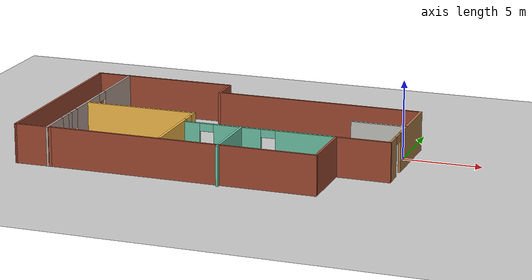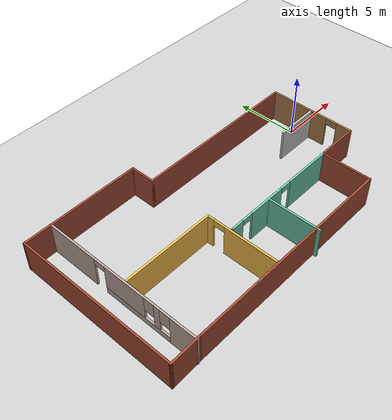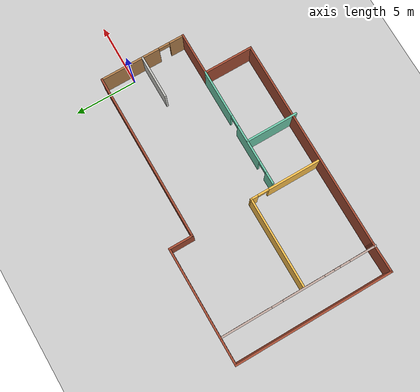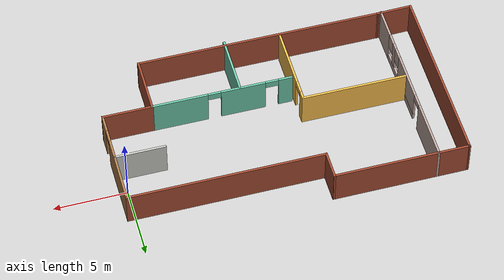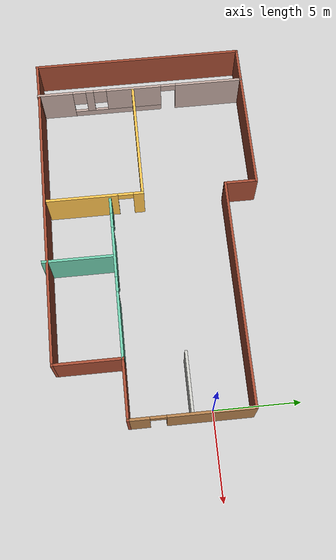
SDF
<sdf version="1.7">
 <world name="default">
  <model name="ground_plane">
   <static>1</static>
   <link name="link">
    <collision name="collision">
     <geometry><plane><normal>0 0 1</normal><size>100 100</size></plane></geometry>
     <surface><friction><ode><mu>100</mu><mu2>50</mu2></ode></friction></surface>
    </collision>
    <visual name="visual">
     <cast_shadows>0</cast_shadows>
     <geometry><plane><normal>0 0 1</normal><size>100 100</size></plane></geometry>
     <material>
      <script><uri>file://media/materials/scripts/gazebo.material</uri><name>Gazebo/Grey</name></script>
     </material>
    </visual>
   </link>
  </model>
  <model name="myhouse">
   <link name="Wall_0">
    <pose>-9.17421 0.100699 0 0 -0 1.5708</pose>
    <visual name="Wall_0_Visual_0">
     <pose>-5.2782 0 1.25 0 -0 0</pose>
     <geometry><box><size>2.1936 0.15 2.5</size></box></geometry>
     <material>
      <script><uri>file://media/materials/scripts/gazebo.material</uri><name>Gazebo/Grey</name></script>
      <ambient>0.760784 0.662745 0.627451 1</ambient>
      <shader type="pixel"/>
     </material>
     <meta><layer>0</layer></meta>
    </visual>
    <visual name="Wall_0_Visual_1">
     <pose>4.2818 0 1.25 0 -0 0</pose>
     <geometry><box><size>4.1864 0.15 2.5</size></box></geometry>
     <material>
      <script><uri>file://media/materials/scripts/gazebo.material</uri><name>Gazebo/Grey</name></script>
      <ambient>0.760784 0.662745 0.627451 1</ambient>
      <shader type="pixel"/>
     </material>
     <meta><layer>0</layer></meta>
    </visual>
    <visual name="Wall_0_Visual_2">
     <pose>-1.4464 0 0.25 0 -0 0</pose>
     <geometry><box><size>5.47 0.15 0.5</size></box></geometry>
     <material>
      <script><uri>file://media/materials/scripts/gazebo.material</uri><name>Gazebo/Grey</name></script>
      <ambient>0.760784 0.662745 0.627451 1</ambient>
      <shader type="pixel"/>
     </material>
     <meta><layer>0</layer></meta>
    </visual>
    <visual name="Wall_0_Visual_3">
     <pose>-3.14315 0 1.5 0 -0 0</pose>
     <geometry><box><size>0.4765 0.15 2</size></box></geometry>
     <material>
      <script><uri>file://media/materials/scripts/gazebo.material</uri><name>Gazebo/Grey</name></script>
      <ambient>0.760784 0.662745 0.627451 1</ambient>
      <shader type="pixel"/>
     </material>
     <meta><layer>0</layer></meta>
    </visual>
    <visual name="Wall_0_Visual_4">
     <pose>-0.408149 0 1.5 0 -0 0</pose>
     <geometry><box><size>3.3935 0.15 2</size></box></geometry>
     <material>
      <script><uri>file://media/materials/scripts/gazebo.material</uri><name>Gazebo/Grey</name></script>
      <ambient>0.760784 0.662745 0.627451 1</ambient>
      <shader type="pixel"/>
     </material>
     <meta><layer>0</layer></meta>
    </visual>
    <visual name="Wall_0_Visual_5">
     <pose>-3.7814 0 1.9 0 -0 0</pose>
     <geometry><box><size>0.8 0.15 1.2</size></box></geometry>
     <material>
      <script><uri>file://media/materials/scripts/gazebo.material</uri><name>Gazebo/Grey</name></script>
      <ambient>0.760784 0.662745 0.627451 1</ambient>
      <shader type="pixel"/>
     </material>
     <meta><layer>0</layer></meta>
    </visual>
    <visual name="Wall_0_Visual_6">
     <pose>-2.5049 0 1.9 0 -0 0</pose>
     <geometry><box><size>0.8 0.15 1.2</size></box></geometry>
     <material>
      <script><uri>file://media/materials/scripts/gazebo.material</uri><name>Gazebo/Grey</name></script>
      <ambient>0.760784 0.662745 0.627451 1</ambient>
      <shader type="pixel"/>
     </material>
     <meta><layer>0</layer></meta>
    </visual>
    <visual name="Wall_0_Visual_7">
     <pose>1.7386 0 2.25 0 -0 0</pose>
     <geometry><box><size>0.9 0.15 0.5</size></box></geometry>
     <material>
      <script><uri>file://media/materials/scripts/gazebo.material</uri><name>Gazebo/Grey</name></script>
      <ambient>0.760784 0.662745 0.627451 1</ambient>
      <shader type="pixel"/>
     </material>
     <meta><layer>0</layer></meta>
    </visual>
    <collision name="Wall_0_Collision_0">
     <pose>-5.2782 0 1.25 0 -0 0</pose>
     <geometry><box><size>2.1936 0.15 2.5</size></box></geometry>
     <surface>
      <friction>
       <ode><mu>1</mu><mu2>1</mu2><fdir1>0 0 0</fdir1><slip1>0</slip1><slip2>0</slip2></ode>
       <torsional>
        <coefficient>1</coefficient>
        <patch_radius>0</patch_radius>
        <surface_radius>0</surface_radius>
        <use_patch_radius>1</use_patch_radius>
        <ode><slip>0</slip></ode>
       </torsional>
      </friction>
      <bounce><restitution_coefficient>0</restitution_coefficient><threshold>1e+06</threshold></bounce>
      <contact>
       <collide_without_contact>0</collide_without_contact>
       <collide_without_contact_bitmask>1</collide_without_contact_bitmask>
       <collide_bitmask>1</collide_bitmask>
       <ode>
        <soft_cfm>0</soft_cfm>
        <soft_erp>0.2</soft_erp>
        <kp>1e+13</kp>
        <kd>1</kd>
        <max_vel>0.01</max_vel>
        <min_depth>0</min_depth>
       </ode>
       <bullet>
        <split_impulse>1</split_impulse>
        <split_impulse_penetration_threshold>-0.01</split_impulse_penetration_threshold>
        <soft_cfm>0</soft_cfm>
        <soft_erp>0.2</soft_erp>
        <kp>1e+13</kp>
        <kd>1</kd>
       </bullet>
      </contact>
     </surface>
    </collision>
    <collision name="Wall_0_Collision_1">
     <pose>4.2818 0 1.25 0 -0 0</pose>
     <geometry><box><size>4.1864 0.15 2.5</size></box></geometry>
     <surface>
      <friction>
       <ode><mu>1</mu><mu2>1</mu2><fdir1>0 0 0</fdir1><slip1>0</slip1><slip2>0</slip2></ode>
       <torsional>
        <coefficient>1</coefficient>
        <patch_radius>0</patch_radius>
        <surface_radius>0</surface_radius>
        <use_patch_radius>1</use_patch_radius>
        <ode><slip>0</slip></ode>
       </torsional>
      </friction>
      <bounce><restitution_coefficient>0</restitution_coefficient><threshold>1e+06</threshold></bounce>
      <contact>
       <collide_without_contact>0</collide_without_contact>
       <collide_without_contact_bitmask>1</collide_without_contact_bitmask>
       <collide_bitmask>1</collide_bitmask>
       <ode>
        <soft_cfm>0</soft_cfm>
        <soft_erp>0.2</soft_erp>
        <kp>1e+13</kp>
        <kd>1</kd>
        <max_vel>0.01</max_vel>
        <min_depth>0</min_depth>
       </ode>
       <bullet>
        <split_impulse>1</split_impulse>
        <split_impulse_penetration_threshold>-0.01</split_impulse_penetration_threshold>
        <soft_cfm>0</soft_cfm>
        <soft_erp>0.2</soft_erp>
        <kp>1e+13</kp>
        <kd>1</kd>
       </bullet>
      </contact>
     </surface>
    </collision>
    <collision name="Wall_0_Collision_2">
     <pose>-1.4464 0 0.25 0 -0 0</pose>
     <geometry><box><size>5.47 0.15 0.5</size></box></geometry>
     <surface>
      <friction>
       <ode><mu>1</mu><mu2>1</mu2><fdir1>0 0 0</fdir1><slip1>0</slip1><slip2>0</slip2></ode>
       <torsional>
        <coefficient>1</coefficient>
        <patch_radius>0</patch_radius>
        <surface_radius>0</surface_radius>
        <use_patch_radius>1</use_patch_radius>
        <ode><slip>0</slip></ode>
       </torsional>
      </friction>
      <bounce><restitution_coefficient>0</restitution_coefficient><threshold>1e+06</threshold></bounce>
      <contact>
       <collide_without_contact>0</collide_without_contact>
       <collide_without_contact_bitmask>1</collide_without_contact_bitmask>
       <collide_bitmask>1</collide_bitmask>
       <ode>
        <soft_cfm>0</soft_cfm>
        <soft_erp>0.2</soft_erp>
        <kp>1e+13</kp>
        <kd>1</kd>
        <max_vel>0.01</max_vel>
        <min_depth>0</min_depth>
       </ode>
       <bullet>
        <split_impulse>1</split_impulse>
        <split_impulse_penetration_threshold>-0.01</split_impulse_penetration_threshold>
        <soft_cfm>0</soft_cfm>
        <soft_erp>0.2</soft_erp>
        <kp>1e+13</kp>
        <kd>1</kd>
       </bullet>
      </contact>
     </surface>
    </collision>
    <collision name="Wall_0_Collision_4">
     <pose>-0.408149 0 1.5 0 -0 0</pose>
     <geometry><box><size>3.3935 0.15 2</size></box></geometry>
     <surface>
      <friction>
       <ode><mu>1</mu><mu2>1</mu2><fdir1>0 0 0</fdir1><slip1>0</slip1><slip2>0</slip2></ode>
       <torsional>
        <coefficient>1</coefficient>
        <patch_radius>0</patch_radius>
        <surface_radius>0</surface_radius>
        <use_patch_radius>1</use_patch_radius>
        <ode><slip>0</slip></ode>
       </torsional>
      </friction>
      <bounce><restitution_coefficient>0</restitution_coefficient><threshold>1e+06</threshold></bounce>
      <contact>
       <collide_without_contact>0</collide_without_contact>
       <collide_without_contact_bitmask>1</collide_without_contact_bitmask>
       <collide_bitmask>1</collide_bitmask>
       <ode>
        <soft_cfm>0</soft_cfm>
        <soft_erp>0.2</soft_erp>
        <kp>1e+13</kp>
        <kd>1</kd>
        <max_vel>0.01</max_vel>
        <min_depth>0</min_depth>
       </ode>
       <bullet>
        <split_impulse>1</split_impulse>
        <split_impulse_penetration_threshold>-0.01</split_impulse_penetration_threshold>
        <soft_cfm>0</soft_cfm>
        <soft_erp>0.2</soft_erp>
        <kp>1e+13</kp>
        <kd>1</kd>
       </bullet>
      </contact>
     </surface>
    </collision>
    <collision name="Wall_0_Collision_3">
     <pose>-3.14315 0 1.5 0 -0 0</pose>
     <geometry><box><size>0.4765 0.15 2</size></box></geometry>
     <surface>
      <friction>
       <ode><mu>1</mu><mu2>1</mu2><fdir1>0 0 0</fdir1><slip1>0</slip1><slip2>0</slip2></ode>
       <torsional>
        <coefficient>1</coefficient>
        <patch_radius>0</patch_radius>
        <surface_radius>0</surface_radius>
        <use_patch_radius>1</use_patch_radius>
        <ode><slip>0</slip></ode>
       </torsional>
      </friction>
      <bounce><restitution_coefficient>0</restitution_coefficient><threshold>1e+06</threshold></bounce>
      <contact>
       <collide_without_contact>0</collide_without_contact>
       <collide_without_contact_bitmask>1</collide_without_contact_bitmask>
       <collide_bitmask>1</collide_bitmask>
       <ode>
        <soft_cfm>0</soft_cfm>
        <soft_erp>0.2</soft_erp>
        <kp>1e+13</kp>
        <kd>1</kd>
        <max_vel>0.01</max_vel>
        <min_depth>0</min_depth>
       </ode>
       <bullet>
        <split_impulse>1</split_impulse>
        <split_impulse_penetration_threshold>-0.01</split_impulse_penetration_threshold>
        <soft_cfm>0</soft_cfm>
        <soft_erp>0.2</soft_erp>
        <kp>1e+13</kp>
        <kd>1</kd>
       </bullet>
      </contact>
     </surface>
    </collision>
    <collision name="Wall_0_Collision_5">
     <pose>-3.7814 0 1.9 0 -0 0</pose>
     <geometry><box><size>0.8 0.15 1.2</size></box></geometry>
     <surface>
      <friction>
       <ode><mu>1</mu><mu2>1</mu2><fdir1>0 0 0</fdir1><slip1>0</slip1><slip2>0</slip2></ode>
       <torsional>
        <coefficient>1</coefficient>
        <patch_radius>0</patch_radius>
        <surface_radius>0</surface_radius>
        <use_patch_radius>1</use_patch_radius>
        <ode><slip>0</slip></ode>
       </torsional>
      </friction>
      <bounce><restitution_coefficient>0</restitution_coefficient><threshold>1e+06</threshold></bounce>
      <contact>
       <collide_without_contact>0</collide_without_contact>
       <collide_without_contact_bitmask>1</collide_without_contact_bitmask>
       <collide_bitmask>1</collide_bitmask>
       <ode>
        <soft_cfm>0</soft_cfm>
        <soft_erp>0.2</soft_erp>
        <kp>1e+13</kp>
        <kd>1</kd>
        <max_vel>0.01</max_vel>
        <min_depth>0</min_depth>
       </ode>
       <bullet>
        <split_impulse>1</split_impulse>
        <split_impulse_penetration_threshold>-0.01</split_impulse_penetration_threshold>
        <soft_cfm>0</soft_cfm>
        <soft_erp>0.2</soft_erp>
        <kp>1e+13</kp>
        <kd>1</kd>
       </bullet>
      </contact>
     </surface>
    </collision>
    <collision name="Wall_0_Collision_6">
     <pose>-2.5049 0 1.9 0 -0 0</pose>
     <geometry><box><size>0.8 0.15 1.2</size></box></geometry>
     <surface>
      <friction>
       <ode><mu>1</mu><mu2>1</mu2><fdir1>0 0 0</fdir1><slip1>0</slip1><slip2>0</slip2></ode>
       <torsional>
        <coefficient>1</coefficient>
        <patch_radius>0</patch_radius>
        <surface_radius>0</surface_radius>
        <use_patch_radius>1</use_patch_radius>
        <ode><slip>0</slip></ode>
       </torsional>
      </friction>
      <bounce><restitution_coefficient>0</restitution_coefficient><threshold>1e+06</threshold></bounce>
      <contact>
       <collide_without_contact>0</collide_without_contact>
       <collide_without_contact_bitmask>1</collide_without_contact_bitmask>
       <collide_bitmask>1</collide_bitmask>
       <ode>
        <soft_cfm>0</soft_cfm>
        <soft_erp>0.2</soft_erp>
        <kp>1e+13</kp>
        <kd>1</kd>
        <max_vel>0.01</max_vel>
        <min_depth>0</min_depth>
       </ode>
       <bullet>
        <split_impulse>1</split_impulse>
        <split_impulse_penetration_threshold>-0.01</split_impulse_penetration_threshold>
        <soft_cfm>0</soft_cfm>
        <soft_erp>0.2</soft_erp>
        <kp>1e+13</kp>
        <kd>1</kd>
       </bullet>
      </contact>
     </surface>
    </collision>
    <collision name="Wall_0_Collision_7">
     <pose>1.7386 0 2.25 0 -0 0</pose>
     <geometry><box><size>0.9 0.15 0.5</size></box></geometry>
     <surface>
      <friction>
       <ode><mu>1</mu><mu2>1</mu2><fdir1>0 0 0</fdir1><slip1>0</slip1><slip2>0</slip2></ode>
       <torsional>
        <coefficient>1</coefficient>
        <patch_radius>0</patch_radius>
        <surface_radius>0</surface_radius>
        <use_patch_radius>1</use_patch_radius>
        <ode><slip>0</slip></ode>
       </torsional>
      </friction>
      <bounce><restitution_coefficient>0</restitution_coefficient><threshold>1e+06</threshold></bounce>
      <contact>
       <collide_without_contact>0</collide_without_contact>
       <collide_without_contact_bitmask>1</collide_without_contact_bitmask>
       <collide_bitmask>1</collide_bitmask>
       <ode>
        <soft_cfm>0</soft_cfm>
        <soft_erp>0.2</soft_erp>
        <kp>1e+13</kp>
        <kd>1</kd>
        <max_vel>0.01</max_vel>
        <min_depth>0</min_depth>
       </ode>
       <bullet>
        <split_impulse>1</split_impulse>
        <split_impulse_penetration_threshold>-0.01</split_impulse_penetration_threshold>
        <soft_cfm>0</soft_cfm>
        <soft_erp>0.2</soft_erp>
        <kp>1e+13</kp>
        <kd>1</kd>
       </bullet>
      </contact>
     </surface>
    </collision>
   </link>
   <link name="Wall_1">
    <pose>-5.62421 6.4007 0 0 -0 0</pose>
    <visual name="Wall_1_Visual">
     <pose>0 0 1.25 0 -0 0</pose>
     <geometry><box><size>7.25 0.15 2.5</size></box></geometry>
     <material>
      <script><uri>file://media/materials/scripts/gazebo.material</uri><name>Gazebo/Bricks</name></script>
      <ambient>1 1 1 1</ambient>
      <shader type="pixel"/>
     </material>
     <meta><layer>0</layer></meta>
    </visual>
    <collision name="Wall_1_Collision">
     <pose>0 0 1.25 0 -0 0</pose>
     <geometry><box><size>7.25 0.15 2.5</size></box></geometry>
     <surface>
      <friction>
       <ode><mu>1</mu><mu2>1</mu2><fdir1>0 0 0</fdir1><slip1>0</slip1><slip2>0</slip2></ode>
       <torsional>
        <coefficient>1</coefficient>
        <patch_radius>0</patch_radius>
        <surface_radius>0</surface_radius>
        <use_patch_radius>1</use_patch_radius>
        <ode><slip>0</slip></ode>
       </torsional>
      </friction>
      <bounce><restitution_coefficient>0</restitution_coefficient><threshold>1e+06</threshold></bounce>
      <contact>
       <collide_without_contact>0</collide_without_contact>
       <collide_without_contact_bitmask>1</collide_without_contact_bitmask>
       <collide_bitmask>1</collide_bitmask>
       <ode>
        <soft_cfm>0</soft_cfm>
        <soft_erp>0.2</soft_erp>
        <kp>1e+13</kp>
        <kd>1</kd>
        <max_vel>0.01</max_vel>
        <min_depth>0</min_depth>
       </ode>
       <bullet>
        <split_impulse>1</split_impulse>
        <split_impulse_penetration_threshold>-0.01</split_impulse_penetration_threshold>
        <soft_cfm>0</soft_cfm>
        <soft_erp>0.2</soft_erp>
        <kp>1e+13</kp>
        <kd>1</kd>
       </bullet>
      </contact>
     </surface>
    </collision>
   </link>
   <link name="Wall_10">
    <pose>-1.92135 -3.16828 0 0 0 -1.5708</pose>
    <visual name="Wall_10_Visual_1">
     <pose>0.76296 0 1.25 0 -0 0</pose>
     <geometry><box><size>4.22408 0.15 2.5</size></box></geometry>
     <material>
      <script><uri>file://media/materials/scripts/gazebo.material</uri><name>Gazebo/Grey</name></script>
      <ambient>1 0.764706 0.305882 1</ambient>
      <shader type="pixel"/>
     </material>
     <meta><layer>0</layer></meta>
    </visual>
    <visual name="Wall_10_Visual_0">
     <pose>-2.56204 0 1.25 0 -0 0</pose>
     <geometry><box><size>0.62592 0.15 2.5</size></box></geometry>
     <material>
      <script><uri>file://media/materials/scripts/gazebo.material</uri><name>Gazebo/Grey</name></script>
      <ambient>1 0.764706 0.305882 1</ambient>
      <shader type="pixel"/>
     </material>
     <meta><layer>0</layer></meta>
    </visual>
    <visual name="Wall_10_Visual_2">
     <pose>-1.79908 0 2.25 0 -0 0</pose>
     <geometry><box><size>0.9 0.15 0.5</size></box></geometry>
     <material>
      <script><uri>file://media/materials/scripts/gazebo.material</uri><name>Gazebo/Grey</name></script>
      <ambient>1 0.764706 0.305882 1</ambient>
      <shader type="pixel"/>
     </material>
     <meta><layer>0</layer></meta>
    </visual>
    <collision name="Wall_10_Collision_0">
     <pose>-2.56204 0 1.25 0 -0 0</pose>
     <geometry><box><size>0.62592 0.15 2.5</size></box></geometry>
     <surface>
      <friction>
       <ode><mu>1</mu><mu2>1</mu2><fdir1>0 0 0</fdir1><slip1>0</slip1><slip2>0</slip2></ode>
       <torsional>
        <coefficient>1</coefficient>
        <patch_radius>0</patch_radius>
        <surface_radius>0</surface_radius>
        <use_patch_radius>1</use_patch_radius>
        <ode><slip>0</slip></ode>
       </torsional>
      </friction>
      <bounce><restitution_coefficient>0</restitution_coefficient><threshold>1e+06</threshold></bounce>
      <contact>
       <collide_without_contact>0</collide_without_contact>
       <collide_without_contact_bitmask>1</collide_without_contact_bitmask>
       <collide_bitmask>1</collide_bitmask>
       <ode>
        <soft_cfm>0</soft_cfm>
        <soft_erp>0.2</soft_erp>
        <kp>1e+13</kp>
        <kd>1</kd>
        <max_vel>0.01</max_vel>
        <min_depth>0</min_depth>
       </ode>
       <bullet>
        <split_impulse>1</split_impulse>
        <split_impulse_penetration_threshold>-0.01</split_impulse_penetration_threshold>
        <soft_cfm>0</soft_cfm>
        <soft_erp>0.2</soft_erp>
        <kp>1e+13</kp>
        <kd>1</kd>
       </bullet>
      </contact>
     </surface>
    </collision>
    <collision name="Wall_10_Collision_1">
     <pose>0.76296 0 1.25 0 -0 0</pose>
     <geometry><box><size>4.22408 0.15 2.5</size></box></geometry>
     <surface>
      <friction>
       <ode><mu>1</mu><mu2>1</mu2><fdir1>0 0 0</fdir1><slip1>0</slip1><slip2>0</slip2></ode>
       <torsional>
        <coefficient>1</coefficient>
        <patch_radius>0</patch_radius>
        <surface_radius>0</surface_radius>
        <use_patch_radius>1</use_patch_radius>
        <ode><slip>0</slip></ode>
       </torsional>
      </friction>
      <bounce><restitution_coefficient>0</restitution_coefficient><threshold>1e+06</threshold></bounce>
      <contact>
       <collide_without_contact>0</collide_without_contact>
       <collide_without_contact_bitmask>1</collide_without_contact_bitmask>
       <collide_bitmask>1</collide_bitmask>
       <ode>
        <soft_cfm>0</soft_cfm>
        <soft_erp>0.2</soft_erp>
        <kp>1e+13</kp>
        <kd>1</kd>
        <max_vel>0.01</max_vel>
        <min_depth>0</min_depth>
       </ode>
       <bullet>
        <split_impulse>1</split_impulse>
        <split_impulse_penetration_threshold>-0.01</split_impulse_penetration_threshold>
        <soft_cfm>0</soft_cfm>
        <soft_erp>0.2</soft_erp>
        <kp>1e+13</kp>
        <kd>1</kd>
       </bullet>
      </contact>
     </surface>
    </collision>
    <collision name="Wall_10_Collision_2">
     <pose>-1.79908 0 2.25 0 -0 0</pose>
     <geometry><box><size>0.9 0.15 0.5</size></box></geometry>
     <surface>
      <friction>
       <ode><mu>1</mu><mu2>1</mu2><fdir1>0 0 0</fdir1><slip1>0</slip1><slip2>0</slip2></ode>
       <torsional>
        <coefficient>1</coefficient>
        <patch_radius>0</patch_radius>
        <surface_radius>0</surface_radius>
        <use_patch_radius>1</use_patch_radius>
        <ode><slip>0</slip></ode>
       </torsional>
      </friction>
      <bounce><restitution_coefficient>0</restitution_coefficient><threshold>1e+06</threshold></bounce>
      <contact>
       <collide_without_contact>0</collide_without_contact>
       <collide_without_contact_bitmask>1</collide_without_contact_bitmask>
       <collide_bitmask>1</collide_bitmask>
       <ode>
        <soft_cfm>0</soft_cfm>
        <soft_erp>0.2</soft_erp>
        <kp>1e+13</kp>
        <kd>1</kd>
        <max_vel>0.01</max_vel>
        <min_depth>0</min_depth>
       </ode>
       <bullet>
        <split_impulse>1</split_impulse>
        <split_impulse_penetration_threshold>-0.01</split_impulse_penetration_threshold>
        <soft_cfm>0</soft_cfm>
        <soft_erp>0.2</soft_erp>
        <kp>1e+13</kp>
        <kd>1</kd>
       </bullet>
      </contact>
     </surface>
    </collision>
   </link>
   <link name="Wall_12">
    <pose>-10.2242 6.4007 0 0 -0 3.14159</pose>
    <visual name="Wall_12_Visual">
     <pose>0 0 1.25 0 -0 0</pose>
     <geometry><box><size>2.25 0.15 2.5</size></box></geometry>
     <material>
      <script><uri>file://media/materials/scripts/gazebo.material</uri><name>Gazebo/Bricks</name></script>
      <ambient>1 1 1 1</ambient>
      <shader type="pixel"/>
     </material>
     <meta><layer>0</layer></meta>
    </visual>
    <collision name="Wall_12_Collision">
     <pose>0 0 1.25 0 -0 0</pose>
     <geometry><box><size>2.25 0.15 2.5</size></box></geometry>
     <surface>
      <friction>
       <ode><mu>1</mu><mu2>1</mu2><fdir1>0 0 0</fdir1><slip1>0</slip1><slip2>0</slip2></ode>
       <torsional>
        <coefficient>1</coefficient>
        <patch_radius>0</patch_radius>
        <surface_radius>0</surface_radius>
        <use_patch_radius>1</use_patch_radius>
        <ode><slip>0</slip></ode>
       </torsional>
      </friction>
      <bounce><restitution_coefficient>0</restitution_coefficient><threshold>1e+06</threshold></bounce>
      <contact>
       <collide_without_contact>0</collide_without_contact>
       <collide_without_contact_bitmask>1</collide_without_contact_bitmask>
       <collide_bitmask>1</collide_bitmask>
       <ode>
        <soft_cfm>0</soft_cfm>
        <soft_erp>0.2</soft_erp>
        <kp>1e+13</kp>
        <kd>1</kd>
        <max_vel>0.01</max_vel>
        <min_depth>0</min_depth>
       </ode>
       <bullet>
        <split_impulse>1</split_impulse>
        <split_impulse_penetration_threshold>-0.01</split_impulse_penetration_threshold>
        <soft_cfm>0</soft_cfm>
        <soft_erp>0.2</soft_erp>
        <kp>1e+13</kp>
        <kd>1</kd>
       </bullet>
      </contact>
     </surface>
    </collision>
   </link>
   <link name="Wall_13">
    <pose>-11.2742 0.100699 0 0 0 -1.5708</pose>
    <visual name="Wall_13_Visual">
     <pose>0 0 1.25 0 -0 0</pose>
     <geometry><box><size>12.75 0.15 2.5</size></box></geometry>
     <material>
      <script><uri>file://media/materials/scripts/gazebo.material</uri><name>Gazebo/Bricks</name></script>
      <ambient>1 1 1 1</ambient>
      <shader type="pixel"/>
     </material>
     <meta><layer>0</layer></meta>
    </visual>
    <collision name="Wall_13_Collision">
     <pose>0 0 1.25 0 -0 0</pose>
     <geometry><box><size>12.75 0.15 2.5</size></box></geometry>
     <surface>
      <friction>
       <ode><mu>1</mu><mu2>1</mu2><fdir1>0 0 0</fdir1><slip1>0</slip1><slip2>0</slip2></ode>
       <torsional>
        <coefficient>1</coefficient>
        <patch_radius>0</patch_radius>
        <surface_radius>0</surface_radius>
        <use_patch_radius>1</use_patch_radius>
        <ode><slip>0</slip></ode>
       </torsional>
      </friction>
      <bounce><restitution_coefficient>0</restitution_coefficient><threshold>1e+06</threshold></bounce>
      <contact>
       <collide_without_contact>0</collide_without_contact>
       <collide_without_contact_bitmask>1</collide_without_contact_bitmask>
       <collide_bitmask>1</collide_bitmask>
       <ode>
        <soft_cfm>0</soft_cfm>
        <soft_erp>0.2</soft_erp>
        <kp>1e+13</kp>
        <kd>1</kd>
        <max_vel>0.01</max_vel>
        <min_depth>0</min_depth>
       </ode>
       <bullet>
        <split_impulse>1</split_impulse>
        <split_impulse_penetration_threshold>-0.01</split_impulse_penetration_threshold>
        <soft_cfm>0</soft_cfm>
        <soft_erp>0.2</soft_erp>
        <kp>1e+13</kp>
        <kd>1</kd>
       </bullet>
      </contact>
     </surface>
    </collision>
   </link>
   <link name="Wall_14">
    <pose>-10.0992 -6.1743 0 0 -0 0.021273</pose>
    <visual name="Wall_14_Visual">
     <pose>0 0 1.25 0 -0 0</pose>
     <geometry><box><size>2.50053 0.15 2.5</size></box></geometry>
     <material>
      <script><uri>file://media/materials/scripts/gazebo.material</uri><name>Gazebo/Bricks</name></script>
      <ambient>1 1 1 1</ambient>
      <shader type="pixel"/>
     </material>
     <meta><layer>0</layer></meta>
    </visual>
    <collision name="Wall_14_Collision">
     <pose>0 0 1.25 0 -0 0</pose>
     <geometry><box><size>2.50053 0.15 2.5</size></box></geometry>
     <surface>
      <friction>
       <ode><mu>1</mu><mu2>1</mu2><fdir1>0 0 0</fdir1><slip1>0</slip1><slip2>0</slip2></ode>
       <torsional>
        <coefficient>1</coefficient>
        <patch_radius>0</patch_radius>
        <surface_radius>0</surface_radius>
        <use_patch_radius>1</use_patch_radius>
        <ode><slip>0</slip></ode>
       </torsional>
      </friction>
      <bounce><restitution_coefficient>0</restitution_coefficient><threshold>1e+06</threshold></bounce>
      <contact>
       <collide_without_contact>0</collide_without_contact>
       <collide_without_contact_bitmask>1</collide_without_contact_bitmask>
       <collide_bitmask>1</collide_bitmask>
       <ode>
        <soft_cfm>0</soft_cfm>
        <soft_erp>0.2</soft_erp>
        <kp>1e+13</kp>
        <kd>1</kd>
        <max_vel>0.01</max_vel>
        <min_depth>0</min_depth>
       </ode>
       <bullet>
        <split_impulse>1</split_impulse>
        <split_impulse_penetration_threshold>-0.01</split_impulse_penetration_threshold>
        <soft_cfm>0</soft_cfm>
        <soft_erp>0.2</soft_erp>
        <kp>1e+13</kp>
        <kd>1</kd>
       </bullet>
      </contact>
     </surface>
    </collision>
   </link>
   <link name="Wall_16">
    <pose>3.12579 -2.2993 0 0 -0 3.14159</pose>
    <visual name="Wall_16_Visual_0">
     <pose>-2.92576 0 1.25 0 -0 0</pose>
     <geometry><box><size>3.89848 0.15 2.5</size></box></geometry>
     <material>
      <script><uri>file://media/materials/scripts/gazebo.material</uri><name>Gazebo/Grey</name></script>
      <ambient>0.435294 0.796078 0.67451 1</ambient>
      <shader type="pixel"/>
     </material>
     <meta><layer>0</layer></meta>
    </visual>
    <visual name="Wall_16_Visual_1">
     <pose>1.45723 0 1.25 0 -0 0</pose>
     <geometry><box><size>3.0675 0.15 2.5</size></box></geometry>
     <material>
      <script><uri>file://media/materials/scripts/gazebo.material</uri><name>Gazebo/Grey</name></script>
      <ambient>0.435294 0.796078 0.67451 1</ambient>
      <shader type="pixel"/>
     </material>
     <meta><layer>0</layer></meta>
    </visual>
    <visual name="Wall_16_Visual_2">
     <pose>4.38299 0 1.25 0 -0 0</pose>
     <geometry><box><size>0.984022 0.15 2.5</size></box></geometry>
     <material>
      <script><uri>file://media/materials/scripts/gazebo.material</uri><name>Gazebo/Grey</name></script>
      <ambient>0.435294 0.796078 0.67451 1</ambient>
      <shader type="pixel"/>
     </material>
     <meta><layer>0</layer></meta>
    </visual>
    <visual name="Wall_16_Visual_3">
     <pose>-0.526522 0 2.25 0 -0 0</pose>
     <geometry><box><size>0.9 0.15 0.5</size></box></geometry>
     <material>
      <script><uri>file://media/materials/scripts/gazebo.material</uri><name>Gazebo/Grey</name></script>
      <ambient>0.435294 0.796078 0.67451 1</ambient>
      <shader type="pixel"/>
     </material>
     <meta><layer>0</layer></meta>
    </visual>
    <visual name="Wall_16_Visual_4">
     <pose>3.44098 0 2.25 0 -0 0</pose>
     <geometry><box><size>0.9 0.15 0.5</size></box></geometry>
     <material>
      <script><uri>file://media/materials/scripts/gazebo.material</uri><name>Gazebo/Grey</name></script>
      <ambient>0.435294 0.796078 0.67451 1</ambient>
      <shader type="pixel"/>
     </material>
     <meta><layer>0</layer></meta>
    </visual>
    <collision name="Wall_16_Collision_0">
     <pose>-2.92576 0 1.25 0 -0 0</pose>
     <geometry><box><size>3.89848 0.15 2.5</size></box></geometry>
     <surface>
      <friction>
       <ode><mu>1</mu><mu2>1</mu2><fdir1>0 0 0</fdir1><slip1>0</slip1><slip2>0</slip2></ode>
       <torsional>
        <coefficient>1</coefficient>
        <patch_radius>0</patch_radius>
        <surface_radius>0</surface_radius>
        <use_patch_radius>1</use_patch_radius>
        <ode><slip>0</slip></ode>
       </torsional>
      </friction>
      <bounce><restitution_coefficient>0</restitution_coefficient><threshold>1e+06</threshold></bounce>
      <contact>
       <collide_without_contact>0</collide_without_contact>
       <collide_without_contact_bitmask>1</collide_without_contact_bitmask>
       <collide_bitmask>1</collide_bitmask>
       <ode>
        <soft_cfm>0</soft_cfm>
        <soft_erp>0.2</soft_erp>
        <kp>1e+13</kp>
        <kd>1</kd>
        <max_vel>0.01</max_vel>
        <min_depth>0</min_depth>
       </ode>
       <bullet>
        <split_impulse>1</split_impulse>
        <split_impulse_penetration_threshold>-0.01</split_impulse_penetration_threshold>
        <soft_cfm>0</soft_cfm>
        <soft_erp>0.2</soft_erp>
        <kp>1e+13</kp>
        <kd>1</kd>
       </bullet>
      </contact>
     </surface>
    </collision>
    <collision name="Wall_16_Collision_1">
     <pose>1.45723 0 1.25 0 -0 0</pose>
     <geometry><box><size>3.0675 0.15 2.5</size></box></geometry>
     <surface>
      <friction>
       <ode><mu>1</mu><mu2>1</mu2><fdir1>0 0 0</fdir1><slip1>0</slip1><slip2>0</slip2></ode>
       <torsional>
        <coefficient>1</coefficient>
        <patch_radius>0</patch_radius>
        <surface_radius>0</surface_radius>
        <use_patch_radius>1</use_patch_radius>
        <ode><slip>0</slip></ode>
       </torsional>
      </friction>
      <bounce><restitution_coefficient>0</restitution_coefficient><threshold>1e+06</threshold></bounce>
      <contact>
       <collide_without_contact>0</collide_without_contact>
       <collide_without_contact_bitmask>1</collide_without_contact_bitmask>
       <collide_bitmask>1</collide_bitmask>
       <ode>
        <soft_cfm>0</soft_cfm>
        <soft_erp>0.2</soft_erp>
        <kp>1e+13</kp>
        <kd>1</kd>
        <max_vel>0.01</max_vel>
        <min_depth>0</min_depth>
       </ode>
       <bullet>
        <split_impulse>1</split_impulse>
        <split_impulse_penetration_threshold>-0.01</split_impulse_penetration_threshold>
        <soft_cfm>0</soft_cfm>
        <soft_erp>0.2</soft_erp>
        <kp>1e+13</kp>
        <kd>1</kd>
       </bullet>
      </contact>
     </surface>
    </collision>
    <collision name="Wall_16_Collision_2">
     <pose>4.38299 0 1.25 0 -0 0</pose>
     <geometry><box><size>0.984022 0.15 2.5</size></box></geometry>
     <surface>
      <friction>
       <ode><mu>1</mu><mu2>1</mu2><fdir1>0 0 0</fdir1><slip1>0</slip1><slip2>0</slip2></ode>
       <torsional>
        <coefficient>1</coefficient>
        <patch_radius>0</patch_radius>
        <surface_radius>0</surface_radius>
        <use_patch_radius>1</use_patch_radius>
        <ode><slip>0</slip></ode>
       </torsional>
      </friction>
      <bounce><restitution_coefficient>0</restitution_coefficient><threshold>1e+06</threshold></bounce>
      <contact>
       <collide_without_contact>0</collide_without_contact>
       <collide_without_contact_bitmask>1</collide_without_contact_bitmask>
       <collide_bitmask>1</collide_bitmask>
       <ode>
        <soft_cfm>0</soft_cfm>
        <soft_erp>0.2</soft_erp>
        <kp>1e+13</kp>
        <kd>1</kd>
        <max_vel>0.01</max_vel>
        <min_depth>0</min_depth>
       </ode>
       <bullet>
        <split_impulse>1</split_impulse>
        <split_impulse_penetration_threshold>-0.01</split_impulse_penetration_threshold>
        <soft_cfm>0</soft_cfm>
        <soft_erp>0.2</soft_erp>
        <kp>1e+13</kp>
        <kd>1</kd>
       </bullet>
      </contact>
     </surface>
    </collision>
    <collision name="Wall_16_Collision_3">
     <pose>-0.526522 0 2.25 0 -0 0</pose>
     <geometry><box><size>0.9 0.15 0.5</size></box></geometry>
     <surface>
      <friction>
       <ode><mu>1</mu><mu2>1</mu2><fdir1>0 0 0</fdir1><slip1>0</slip1><slip2>0</slip2></ode>
       <torsional>
        <coefficient>1</coefficient>
        <patch_radius>0</patch_radius>
        <surface_radius>0</surface_radius>
        <use_patch_radius>1</use_patch_radius>
        <ode><slip>0</slip></ode>
       </torsional>
      </friction>
      <bounce><restitution_coefficient>0</restitution_coefficient><threshold>1e+06</threshold></bounce>
      <contact>
       <collide_without_contact>0</collide_without_contact>
       <collide_without_contact_bitmask>1</collide_without_contact_bitmask>
       <collide_bitmask>1</collide_bitmask>
       <ode>
        <soft_cfm>0</soft_cfm>
        <soft_erp>0.2</soft_erp>
        <kp>1e+13</kp>
        <kd>1</kd>
        <max_vel>0.01</max_vel>
        <min_depth>0</min_depth>
       </ode>
       <bullet>
        <split_impulse>1</split_impulse>
        <split_impulse_penetration_threshold>-0.01</split_impulse_penetration_threshold>
        <soft_cfm>0</soft_cfm>
        <soft_erp>0.2</soft_erp>
        <kp>1e+13</kp>
        <kd>1</kd>
       </bullet>
      </contact>
     </surface>
    </collision>
    <collision name="Wall_16_Collision_4">
     <pose>3.44098 0 2.25 0 -0 0</pose>
     <geometry><box><size>0.9 0.15 0.5</size></box></geometry>
     <surface>
      <friction>
       <ode><mu>1</mu><mu2>1</mu2><fdir1>0 0 0</fdir1><slip1>0</slip1><slip2>0</slip2></ode>
       <torsional>
        <coefficient>1</coefficient>
        <patch_radius>0</patch_radius>
        <surface_radius>0</surface_radius>
        <use_patch_radius>1</use_patch_radius>
        <ode><slip>0</slip></ode>
       </torsional>
      </friction>
      <bounce><restitution_coefficient>0</restitution_coefficient><threshold>1e+06</threshold></bounce>
      <contact>
       <collide_without_contact>0</collide_without_contact>
       <collide_without_contact_bitmask>1</collide_without_contact_bitmask>
       <collide_bitmask>1</collide_bitmask>
       <ode>
        <soft_cfm>0</soft_cfm>
        <soft_erp>0.2</soft_erp>
        <kp>1e+13</kp>
        <kd>1</kd>
        <max_vel>0.01</max_vel>
        <min_depth>0</min_depth>
       </ode>
       <bullet>
        <split_impulse>1</split_impulse>
        <split_impulse_penetration_threshold>-0.01</split_impulse_penetration_threshold>
        <soft_cfm>0</soft_cfm>
        <soft_erp>0.2</soft_erp>
        <kp>1e+13</kp>
        <kd>1</kd>
       </bullet>
      </contact>
     </surface>
    </collision>
   </link>
   <link name="Wall_18">
    <pose>1.89281 -4.3507 0 0 0 -1.5708</pose>
    <visual name="Wall_18_Visual">
     <pose>0 0 1.25 0 -0 0</pose>
     <geometry><box><size>4.25 0.15 2.5</size></box></geometry>
     <material>
      <script><uri>file://media/materials/scripts/gazebo.material</uri><name>Gazebo/Grey</name></script>
      <ambient>0.435294 0.796078 0.67451 1</ambient>
      <shader type="pixel"/>
     </material>
     <meta><layer>0</layer></meta>
    </visual>
    <collision name="Wall_18_Collision">
     <pose>0 0 1.25 0 -0 0</pose>
     <geometry><box><size>4.25 0.15 2.5</size></box></geometry>
     <surface>
      <friction>
       <ode><mu>1</mu><mu2>1</mu2><fdir1>0 0 0</fdir1><slip1>0</slip1><slip2>0</slip2></ode>
       <torsional>
        <coefficient>1</coefficient>
        <patch_radius>0</patch_radius>
        <surface_radius>0</surface_radius>
        <use_patch_radius>1</use_patch_radius>
        <ode><slip>0</slip></ode>
       </torsional>
      </friction>
      <bounce><restitution_coefficient>0</restitution_coefficient><threshold>1e+06</threshold></bounce>
      <contact>
       <collide_without_contact>0</collide_without_contact>
       <collide_without_contact_bitmask>1</collide_without_contact_bitmask>
       <collide_bitmask>1</collide_bitmask>
       <ode>
        <soft_cfm>0</soft_cfm>
        <soft_erp>0.2</soft_erp>
        <kp>1e+13</kp>
        <kd>1</kd>
        <max_vel>0.01</max_vel>
        <min_depth>0</min_depth>
       </ode>
       <bullet>
        <split_impulse>1</split_impulse>
        <split_impulse_penetration_threshold>-0.01</split_impulse_penetration_threshold>
        <soft_cfm>0</soft_cfm>
        <soft_erp>0.2</soft_erp>
        <kp>1e+13</kp>
        <kd>1</kd>
       </bullet>
      </contact>
     </surface>
    </collision>
   </link>
   <link name="Wall_2">
    <pose>-2.07421 5.4757 0 0 0 -1.5708</pose>
    <visual name="Wall_2_Visual">
     <pose>0 0 1.25 0 -0 0</pose>
     <geometry><box><size>2 0.15 2.5</size></box></geometry>
     <material>
      <script><uri>file://media/materials/scripts/gazebo.material</uri><name>Gazebo/Bricks</name></script>
      <ambient>1 1 1 1</ambient>
      <shader type="pixel"/>
     </material>
     <meta><layer>0</layer></meta>
    </visual>
    <collision name="Wall_2_Collision">
     <pose>0 0 1.25 0 -0 0</pose>
     <geometry><box><size>2 0.15 2.5</size></box></geometry>
     <surface>
      <friction>
       <ode><mu>1</mu><mu2>1</mu2><fdir1>0 0 0</fdir1><slip1>0</slip1><slip2>0</slip2></ode>
       <torsional>
        <coefficient>1</coefficient>
        <patch_radius>0</patch_radius>
        <surface_radius>0</surface_radius>
        <use_patch_radius>1</use_patch_radius>
        <ode><slip>0</slip></ode>
       </torsional>
      </friction>
      <bounce><restitution_coefficient>0</restitution_coefficient><threshold>1e+06</threshold></bounce>
      <contact>
       <collide_without_contact>0</collide_without_contact>
       <collide_without_contact_bitmask>1</collide_without_contact_bitmask>
       <collide_bitmask>1</collide_bitmask>
       <ode>
        <soft_cfm>0</soft_cfm>
        <soft_erp>0.2</soft_erp>
        <kp>1e+13</kp>
        <kd>1</kd>
        <max_vel>0.01</max_vel>
        <min_depth>0</min_depth>
       </ode>
       <bullet>
        <split_impulse>1</split_impulse>
        <split_impulse_penetration_threshold>-0.01</split_impulse_penetration_threshold>
        <soft_cfm>0</soft_cfm>
        <soft_erp>0.2</soft_erp>
        <kp>1e+13</kp>
        <kd>1</kd>
       </bullet>
      </contact>
     </surface>
    </collision>
   </link>
   <link name="Wall_20">
    <pose>9.56731 1.1493 0 0 -0 3.14159</pose>
    <visual name="Wall_20_Visual">
     <pose>0 0 1.25 0 -0 0</pose>
     <geometry><box><size>3.5 0.15 2.5</size></box></geometry>
     <material>
      <script><uri>file://media/materials/scripts/gazebo.material</uri><name>Gazebo/CeilingTiled</name></script>
      <ambient>0.435294 0.796078 0.67451 1</ambient>
      <shader type="pixel"/>
     </material>
     <meta><layer>0</layer></meta>
    </visual>
    <collision name="Wall_20_Collision">
     <pose>0 0 1.25 0 -0 0</pose>
     <geometry><box><size>3.5 0.15 2.5</size></box></geometry>
     <surface>
      <friction>
       <ode><mu>1</mu><mu2>1</mu2><fdir1>0 0 0</fdir1><slip1>0</slip1><slip2>0</slip2></ode>
       <torsional>
        <coefficient>1</coefficient>
        <patch_radius>0</patch_radius>
        <surface_radius>0</surface_radius>
        <use_patch_radius>1</use_patch_radius>
        <ode><slip>0</slip></ode>
       </torsional>
      </friction>
      <bounce><restitution_coefficient>0</restitution_coefficient><threshold>1e+06</threshold></bounce>
      <contact>
       <collide_without_contact>0</collide_without_contact>
       <collide_without_contact_bitmask>1</collide_without_contact_bitmask>
       <collide_bitmask>1</collide_bitmask>
       <ode>
        <soft_cfm>0</soft_cfm>
        <soft_erp>0.2</soft_erp>
        <kp>1e+13</kp>
        <kd>1</kd>
        <max_vel>0.01</max_vel>
        <min_depth>0</min_depth>
       </ode>
       <bullet>
        <split_impulse>1</split_impulse>
        <split_impulse_penetration_threshold>-0.01</split_impulse_penetration_threshold>
        <soft_cfm>0</soft_cfm>
        <soft_erp>0.2</soft_erp>
        <kp>1e+13</kp>
        <kd>1</kd>
       </bullet>
      </contact>
     </surface>
    </collision>
   </link>
   <link name="Wall_3">
    <pose>4.60079 4.5507 0 0 -0 0</pose>
    <visual name="Wall_3_Visual">
     <pose>0 0 1.25 0 -0 0</pose>
     <geometry><box><size>13.5 0.15 2.5</size></box></geometry>
     <material>
      <script><uri>file://media/materials/scripts/gazebo.material</uri><name>Gazebo/Bricks</name></script>
      <ambient>1 1 1 1</ambient>
      <shader type="pixel"/>
     </material>
     <meta><layer>0</layer></meta>
    </visual>
    <collision name="Wall_3_Collision">
     <pose>0 0 1.25 0 -0 0</pose>
     <geometry><box><size>13.5 0.15 2.5</size></box></geometry>
     <surface>
      <friction>
       <ode><mu>1</mu><mu2>1</mu2><fdir1>0 0 0</fdir1><slip1>0</slip1><slip2>0</slip2></ode>
       <torsional>
        <coefficient>1</coefficient>
        <patch_radius>0</patch_radius>
        <surface_radius>0</surface_radius>
        <use_patch_radius>1</use_patch_radius>
        <ode><slip>0</slip></ode>
       </torsional>
      </friction>
      <bounce><restitution_coefficient>0</restitution_coefficient><threshold>1e+06</threshold></bounce>
      <contact>
       <collide_without_contact>0</collide_without_contact>
       <collide_without_contact_bitmask>1</collide_without_contact_bitmask>
       <collide_bitmask>1</collide_bitmask>
       <ode>
        <soft_cfm>0</soft_cfm>
        <soft_erp>0.2</soft_erp>
        <kp>1e+13</kp>
        <kd>1</kd>
        <max_vel>0.01</max_vel>
        <min_depth>0</min_depth>
       </ode>
       <bullet>
        <split_impulse>1</split_impulse>
        <split_impulse_penetration_threshold>-0.01</split_impulse_penetration_threshold>
        <soft_cfm>0</soft_cfm>
        <soft_erp>0.2</soft_erp>
        <kp>1e+13</kp>
        <kd>1</kd>
       </bullet>
      </contact>
     </surface>
    </collision>
   </link>
   <link name="Wall_4">
    <pose>11.2758 1.1257 0 0 0 -1.5708</pose>
    <visual name="Wall_4_Visual_0">
     <pose>-1.07255 0 1.25 0 -0 0</pose>
     <geometry><box><size>4.8549 0.15 2.5</size></box></geometry>
     <material>
      <script><uri>file://media/materials/scripts/gazebo.material</uri><name>Gazebo/Wood</name></script>
      <ambient>1 1 1 1</ambient>
      <shader type="pixel"/>
     </material>
     <meta><layer>0</layer></meta>
    </visual>
    <visual name="Wall_4_Visual_1">
     <pose>2.87745 0 1.25 0 -0 0</pose>
     <geometry><box><size>1.2451 0.15 2.5</size></box></geometry>
     <material>
      <script><uri>file://media/materials/scripts/gazebo.material</uri><name>Gazebo/Wood</name></script>
      <ambient>1 1 1 1</ambient>
      <shader type="pixel"/>
     </material>
     <meta><layer>0</layer></meta>
    </visual>
    <visual name="Wall_4_Visual_2">
     <pose>1.8049 0 2.25 0 -0 0</pose>
     <geometry><box><size>0.9 0.15 0.5</size></box></geometry>
     <material>
      <script><uri>file://media/materials/scripts/gazebo.material</uri><name>Gazebo/Wood</name></script>
      <ambient>1 1 1 1</ambient>
      <shader type="pixel"/>
     </material>
     <meta><layer>0</layer></meta>
    </visual>
    <collision name="Wall_4_Collision_0">
     <pose>-1.07255 0 1.25 0 -0 0</pose>
     <geometry><box><size>4.8549 0.15 2.5</size></box></geometry>
     <surface>
      <friction>
       <ode><mu>1</mu><mu2>1</mu2><fdir1>0 0 0</fdir1><slip1>0</slip1><slip2>0</slip2></ode>
       <torsional>
        <coefficient>1</coefficient>
        <patch_radius>0</patch_radius>
        <surface_radius>0</surface_radius>
        <use_patch_radius>1</use_patch_radius>
        <ode><slip>0</slip></ode>
       </torsional>
      </friction>
      <bounce><restitution_coefficient>0</restitution_coefficient><threshold>1e+06</threshold></bounce>
      <contact>
       <collide_without_contact>0</collide_without_contact>
       <collide_without_contact_bitmask>1</collide_without_contact_bitmask>
       <collide_bitmask>1</collide_bitmask>
       <ode>
        <soft_cfm>0</soft_cfm>
        <soft_erp>0.2</soft_erp>
        <kp>1e+13</kp>
        <kd>1</kd>
        <max_vel>0.01</max_vel>
        <min_depth>0</min_depth>
       </ode>
       <bullet>
        <split_impulse>1</split_impulse>
        <split_impulse_penetration_threshold>-0.01</split_impulse_penetration_threshold>
        <soft_cfm>0</soft_cfm>
        <soft_erp>0.2</soft_erp>
        <kp>1e+13</kp>
        <kd>1</kd>
       </bullet>
      </contact>
     </surface>
    </collision>
    <collision name="Wall_4_Collision_1">
     <pose>2.87745 0 1.25 0 -0 0</pose>
     <geometry><box><size>1.2451 0.15 2.5</size></box></geometry>
     <surface>
      <friction>
       <ode><mu>1</mu><mu2>1</mu2><fdir1>0 0 0</fdir1><slip1>0</slip1><slip2>0</slip2></ode>
       <torsional>
        <coefficient>1</coefficient>
        <patch_radius>0</patch_radius>
        <surface_radius>0</surface_radius>
        <use_patch_radius>1</use_patch_radius>
        <ode><slip>0</slip></ode>
       </torsional>
      </friction>
      <bounce><restitution_coefficient>0</restitution_coefficient><threshold>1e+06</threshold></bounce>
      <contact>
       <collide_without_contact>0</collide_without_contact>
       <collide_without_contact_bitmask>1</collide_without_contact_bitmask>
       <collide_bitmask>1</collide_bitmask>
       <ode>
        <soft_cfm>0</soft_cfm>
        <soft_erp>0.2</soft_erp>
        <kp>1e+13</kp>
        <kd>1</kd>
        <max_vel>0.01</max_vel>
        <min_depth>0</min_depth>
       </ode>
       <bullet>
        <split_impulse>1</split_impulse>
        <split_impulse_penetration_threshold>-0.01</split_impulse_penetration_threshold>
        <soft_cfm>0</soft_cfm>
        <soft_erp>0.2</soft_erp>
        <kp>1e+13</kp>
        <kd>1</kd>
       </bullet>
      </contact>
     </surface>
    </collision>
    <collision name="Wall_4_Collision_2">
     <pose>1.8049 0 2.25 0 -0 0</pose>
     <geometry><box><size>0.9 0.15 0.5</size></box></geometry>
     <surface>
      <friction>
       <ode><mu>1</mu><mu2>1</mu2><fdir1>0 0 0</fdir1><slip1>0</slip1><slip2>0</slip2></ode>
       <torsional>
        <coefficient>1</coefficient>
        <patch_radius>0</patch_radius>
        <surface_radius>0</surface_radius>
        <use_patch_radius>1</use_patch_radius>
        <ode><slip>0</slip></ode>
       </torsional>
      </friction>
      <bounce><restitution_coefficient>0</restitution_coefficient><threshold>1e+06</threshold></bounce>
      <contact>
       <collide_without_contact>0</collide_without_contact>
       <collide_without_contact_bitmask>1</collide_without_contact_bitmask>
       <collide_bitmask>1</collide_bitmask>
       <ode>
        <soft_cfm>0</soft_cfm>
        <soft_erp>0.2</soft_erp>
        <kp>1e+13</kp>
        <kd>1</kd>
        <max_vel>0.01</max_vel>
        <min_depth>0</min_depth>
       </ode>
       <bullet>
        <split_impulse>1</split_impulse>
        <split_impulse_penetration_threshold>-0.01</split_impulse_penetration_threshold>
        <soft_cfm>0</soft_cfm>
        <soft_erp>0.2</soft_erp>
        <kp>1e+13</kp>
        <kd>1</kd>
       </bullet>
      </contact>
     </surface>
    </collision>
   </link>
   <link name="Wall_5">
    <pose>9.60079 -2.2993 0 0 -0 3.14159</pose>
    <visual name="Wall_5_Visual">
     <pose>0 0 1.25 0 -0 0</pose>
     <geometry><box><size>3.5 0.15 2.5</size></box></geometry>
     <material>
      <script><uri>file://media/materials/scripts/gazebo.material</uri><name>Gazebo/Bricks</name></script>
      <ambient>1 1 1 1</ambient>
      <shader type="pixel"/>
     </material>
     <meta><layer>0</layer></meta>
    </visual>
    <collision name="Wall_5_Collision">
     <pose>0 0 1.25 0 -0 0</pose>
     <geometry><box><size>3.5 0.15 2.5</size></box></geometry>
     <surface>
      <friction>
       <ode><mu>1</mu><mu2>1</mu2><fdir1>0 0 0</fdir1><slip1>0</slip1><slip2>0</slip2></ode>
       <torsional>
        <coefficient>1</coefficient>
        <patch_radius>0</patch_radius>
        <surface_radius>0</surface_radius>
        <use_patch_radius>1</use_patch_radius>
        <ode><slip>0</slip></ode>
       </torsional>
      </friction>
      <bounce><restitution_coefficient>0</restitution_coefficient><threshold>1e+06</threshold></bounce>
      <contact>
       <collide_without_contact>0</collide_without_contact>
       <collide_without_contact_bitmask>1</collide_without_contact_bitmask>
       <collide_bitmask>1</collide_bitmask>
       <ode>
        <soft_cfm>0</soft_cfm>
        <soft_erp>0.2</soft_erp>
        <kp>1e+13</kp>
        <kd>1</kd>
        <max_vel>0.01</max_vel>
        <min_depth>0</min_depth>
       </ode>
       <bullet>
        <split_impulse>1</split_impulse>
        <split_impulse_penetration_threshold>-0.01</split_impulse_penetration_threshold>
        <soft_cfm>0</soft_cfm>
        <soft_erp>0.2</soft_erp>
        <kp>1e+13</kp>
        <kd>1</kd>
       </bullet>
      </contact>
     </surface>
    </collision>
   </link>
   <link name="Wall_6">
    <pose>7.92579 -4.2243 0 0 0 -1.5708</pose>
    <visual name="Wall_6_Visual">
     <pose>0 0 1.25 0 -0 0</pose>
     <geometry><box><size>4 0.15 2.5</size></box></geometry>
     <material>
      <script><uri>file://media/materials/scripts/gazebo.material</uri><name>Gazebo/Bricks</name></script>
      <ambient>1 1 1 1</ambient>
      <shader type="pixel"/>
     </material>
     <meta><layer>0</layer></meta>
    </visual>
    <collision name="Wall_6_Collision">
     <pose>0 0 1.25 0 -0 0</pose>
     <geometry><box><size>4 0.15 2.5</size></box></geometry>
     <surface>
      <friction>
       <ode><mu>1</mu><mu2>1</mu2><fdir1>0 0 0</fdir1><slip1>0</slip1><slip2>0</slip2></ode>
       <torsional>
        <coefficient>1</coefficient>
        <patch_radius>0</patch_radius>
        <surface_radius>0</surface_radius>
        <use_patch_radius>1</use_patch_radius>
        <ode><slip>0</slip></ode>
       </torsional>
      </friction>
      <bounce><restitution_coefficient>0</restitution_coefficient><threshold>1e+06</threshold></bounce>
      <contact>
       <collide_without_contact>0</collide_without_contact>
       <collide_without_contact_bitmask>1</collide_without_contact_bitmask>
       <collide_bitmask>1</collide_bitmask>
       <ode>
        <soft_cfm>0</soft_cfm>
        <soft_erp>0.2</soft_erp>
        <kp>1e+13</kp>
        <kd>1</kd>
        <max_vel>0.01</max_vel>
        <min_depth>0</min_depth>
       </ode>
       <bullet>
        <split_impulse>1</split_impulse>
        <split_impulse_penetration_threshold>-0.01</split_impulse_penetration_threshold>
        <soft_cfm>0</soft_cfm>
        <soft_erp>0.2</soft_erp>
        <kp>1e+13</kp>
        <kd>1</kd>
       </bullet>
      </contact>
     </surface>
    </collision>
   </link>
   <link name="Wall_7">
    <pose>-0.49921 -6.1493 0 0 -0 3.14159</pose>
    <visual name="Wall_7_Visual">
     <pose>0 0 1.25 0 -0 0</pose>
     <geometry><box><size>17 0.15 2.5</size></box></geometry>
     <material>
      <script><uri>file://media/materials/scripts/gazebo.material</uri><name>Gazebo/Bricks</name></script>
      <ambient>1 1 1 1</ambient>
      <shader type="pixel"/>
     </material>
     <meta><layer>0</layer></meta>
    </visual>
    <collision name="Wall_7_Collision">
     <pose>0 0 1.25 0 -0 0</pose>
     <geometry><box><size>17 0.15 2.5</size></box></geometry>
     <surface>
      <friction>
       <ode><mu>1</mu><mu2>1</mu2><fdir1>0 0 0</fdir1><slip1>0</slip1><slip2>0</slip2></ode>
       <torsional>
        <coefficient>1</coefficient>
        <patch_radius>0</patch_radius>
        <surface_radius>0</surface_radius>
        <use_patch_radius>1</use_patch_radius>
        <ode><slip>0</slip></ode>
       </torsional>
      </friction>
      <bounce><restitution_coefficient>0</restitution_coefficient><threshold>1e+06</threshold></bounce>
      <contact>
       <collide_without_contact>0</collide_without_contact>
       <collide_without_contact_bitmask>1</collide_without_contact_bitmask>
       <collide_bitmask>1</collide_bitmask>
       <ode>
        <soft_cfm>0</soft_cfm>
        <soft_erp>0.2</soft_erp>
        <kp>1e+13</kp>
        <kd>1</kd>
        <max_vel>0.01</max_vel>
        <min_depth>0</min_depth>
       </ode>
       <bullet>
        <split_impulse>1</split_impulse>
        <split_impulse_penetration_threshold>-0.01</split_impulse_penetration_threshold>
        <soft_cfm>0</soft_cfm>
        <soft_erp>0.2</soft_erp>
        <kp>1e+13</kp>
        <kd>1</kd>
       </bullet>
      </contact>
     </surface>
    </collision>
   </link>
   <link name="Wall_9">
    <pose>-5.47135 -0.36828 0 0 -0 0</pose>
    <visual name="Wall_9_Visual">
     <pose>0 0 1.25 0 -0 0</pose>
     <geometry><box><size>7.25 0.15 2.5</size></box></geometry>
     <material>
      <script><uri>file://media/materials/scripts/gazebo.material</uri><name>Gazebo/Grey</name></script>
      <ambient>1 0.764706 0.305882 1</ambient>
      <shader type="pixel"/>
     </material>
     <meta><layer>0</layer></meta>
    </visual>
    <collision name="Wall_9_Collision">
     <pose>0 0 1.25 0 -0 0</pose>
     <geometry><box><size>7.25 0.15 2.5</size></box></geometry>
     <surface>
      <friction>
       <ode><mu>1</mu><mu2>1</mu2><fdir1>0 0 0</fdir1><slip1>0</slip1><slip2>0</slip2></ode>
       <torsional>
        <coefficient>1</coefficient>
        <patch_radius>0</patch_radius>
        <surface_radius>0</surface_radius>
        <use_patch_radius>1</use_patch_radius>
        <ode><slip>0</slip></ode>
       </torsional>
      </friction>
      <bounce><restitution_coefficient>0</restitution_coefficient><threshold>1e+06</threshold></bounce>
      <contact>
       <collide_without_contact>0</collide_without_contact>
       <collide_without_contact_bitmask>1</collide_without_contact_bitmask>
       <collide_bitmask>1</collide_bitmask>
       <ode>
        <soft_cfm>0</soft_cfm>
        <soft_erp>0.2</soft_erp>
        <kp>1e+13</kp>
        <kd>1</kd>
        <max_vel>0.01</max_vel>
        <min_depth>0</min_depth>
       </ode>
       <bullet>
        <split_impulse>1</split_impulse>
        <split_impulse_penetration_threshold>-0.01</split_impulse_penetration_threshold>
        <soft_cfm>0</soft_cfm>
        <soft_erp>0.2</soft_erp>
        <kp>1e+13</kp>
        <kd>1</kd>
       </bullet>
      </contact>
     </surface>
    </collision>
   </link>
   <static>1</static>
   <pose>-10.7843 -2.38564 0 0 -0 0</pose>
  </model>
 </world>
</sdf>
